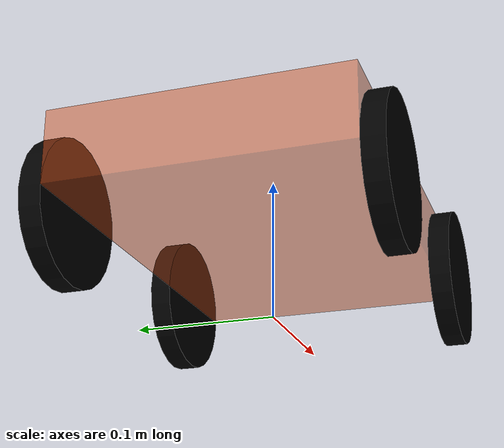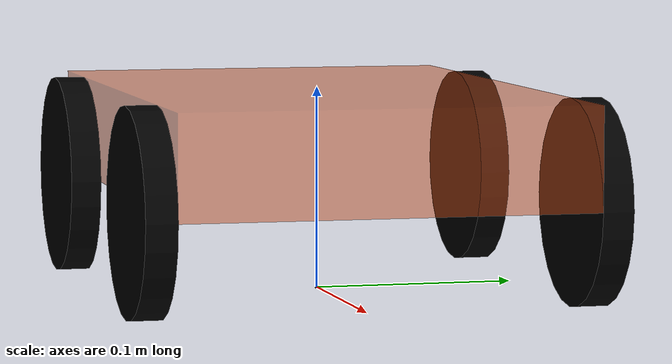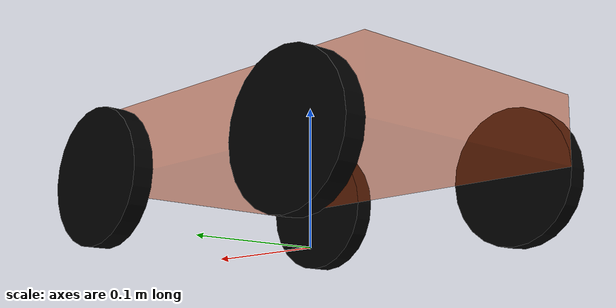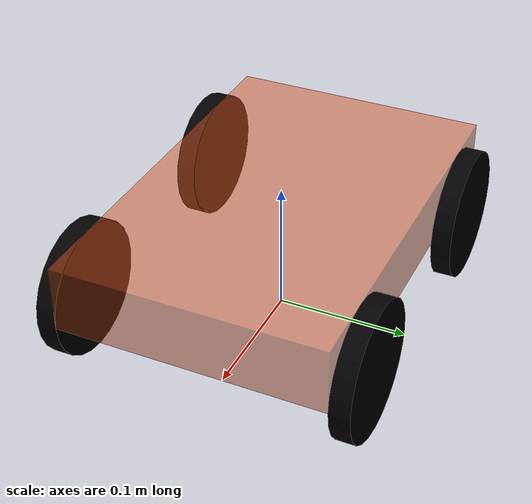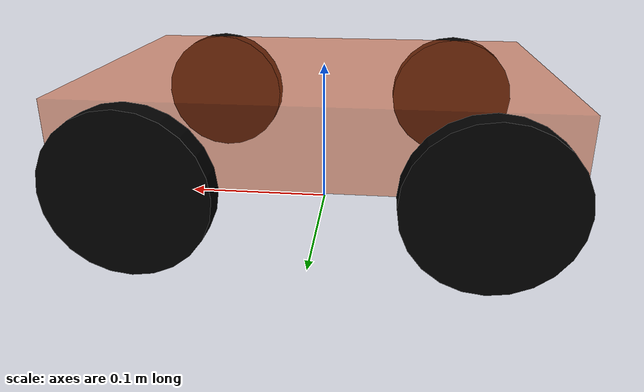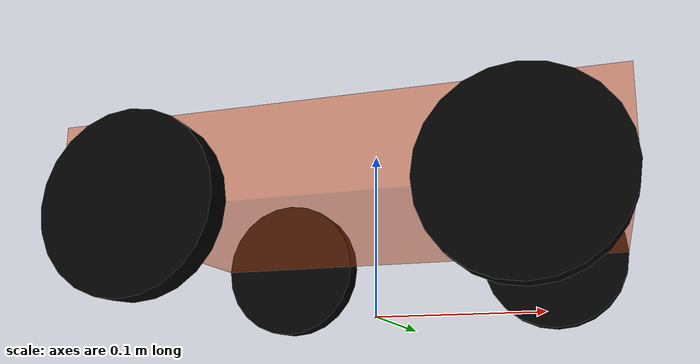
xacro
<robot name="mycar" xmlns:xacro="http://wiki.ros.org/xacro">
<!-- parameter -->
        <xacro:property name="PI" value="3.1415926"/>
        <material name="black">
            <color rgba="0 0 0 1" />
        </material >
        <material name="yellow">
            <color rgba="0.8 0.3 0.1 0.5"/>
        </material>

<!-- creat foot_print -->
              <xacro:macro name="create_sphere"  params="name radius  colorname mass">
                <link name="${name}">
                        <visual>
                                <geometry>
                                        <sphere radius="${radius}"/>
                                </geometry>
                                <material name="${colorname}"/>
                                <origin xyz="0 0 0" rpy="0 0 0"/>
                        </visual>
                </link>
        </xacro:macro>

        <xacro:create_sphere name="foot_print" radius="0.001" colorname="black" mass="0.01"/>

<!-- creat body link -->
         <xacro:property name="body_width" value="0.2"/>
        <xacro:property name="body_length" value="0.3"/>
        <xacro:property name="body_height" value="0.05"/>
        <xacro:property  name="body_mass" value="1" />

        <link name="body">
                        <visual>
                                        <geometry>
                                                        <box size="${body_length} ${body_width} ${body_height}"/>
                                        </geometry>
                                        <material name="yellow"/>
                                        <origin xyz="0 0 0" rpy="0 0 0"/>
                        </visual>
                        <collision>
                                        <geometry>
                                                        <box size="${body_length} ${body_width} ${body_height}"/>
                                        </geometry>
                                        <origin xyz="0 0 0" rpy="0 0 0"/>
                        </collision>
                        <xacro:Box_inertial_matrix m="${body_mass}" w="${body_width}" l="${body_length}" h="${body_height}"/>
        </link>

 <!-- create  joint  body2foot_print -->
<xacro:property name="vertical2ground_distance" value="0.05"/>

<joint name="body2foot_print" type="fixed">
        <parent link="foot_print"/>
        <child link="body"/>
        <origin xyz="0 0 ${body_height/2+vertical2ground_distance}" rpy="0 0 0"/>
</joint>

<!-- creat wheel link -->
        <xacro:macro name="create_cylinder"  params="name radius length colorname mass">
                <link name="${name}">
                        <visual>
                                <geometry>
                                        <cylinder radius="${radius}" length="${length}"/>
                                </geometry>
                                <material name="${colorname}"/>
                                <origin xyz="0 0 0" rpy="0 0 0"/>
                        </visual>
                        <collision>
                                <geometry>
                                        <cylinder radius="${radius}" length="${length}"/>
                                </geometry>
                                <origin xyz="0 0 0" rpy="0 0 0"/>
                        </collision>
                      <xacro:cylinder_inertial_matrix m="${mass}" r="${radius}" h="${length}" />
                </link>
        </xacro:macro>

        <xacro:property name="wheel_radius" value="0.05"/>
        <xacro:property name="wheel_length" value="0.015"/>
        <xacro:property name="wheel_mass" value="0.05" />

        <xacro:create_cylinder name="wheel_front_right" radius="${wheel_radius}" length="${wheel_length}" colorname="black" mass="${wheel_mass}"/>
        <xacro:create_cylinder name="wheel_front_left" radius="${wheel_radius}" length="${wheel_length}" colorname="black" mass="${wheel_mass}"/>
        <xacro:create_cylinder  name="wheel_behind_right" radius="${wheel_radius}" length="${wheel_length}" colorname="black" mass="${wheel_mass}"/>
        <xacro:create_cylinder name="wheel_behind_left" radius="${wheel_radius}" length="${wheel_length}" colorname="black" mass="${wheel_mass}"/>

<!-- create joint wheel2body -->
<xacro:property name="wheel_distance" value="${body_length/2-wheel_radius}"/>

 <xacro:macro name="wheel2body" params="name xflag yflag">
                <joint name="${name}2body" type="continuous">
                        <parent link="body"/>
                        <child link="${name}"/>
                        <origin xyz="${xflag}${wheel_distance} ${yflag}${body_width/2+wheel_length/2} ${wheel_radius-vertical2ground_distance-body_height/2}" rpy="${-PI/2} 0 0"/>
                        <axis xyz="0 0 1"/>
                </joint>
</xacro:macro>

<xacro:wheel2body name="wheel_front_right" xflag="+" yflag="-"/>
<xacro:wheel2body name="wheel_behind_right" xflag="-" yflag="-"/>
<xacro:wheel2body name="wheel_front_left" xflag="+" yflag="+"/>
<xacro:wheel2body name="wheel_behind_left" xflag="-" yflag="+"/>

<gazebo reference="body">
                <material> Gazebo/Yellow</material>
</gazebo>

<gazebo reference="wheel_front_right">
                <material>Gazebo/Black</material>
                    <mu1>1000000</mu1>
		    <mu2>1000000</mu2>
		    <kp>1000</kp>
		    <kd>1000</kd>
</gazebo>

<gazebo reference="wheel_behind_right">
                <material>Gazebo/Black</material>
                         <mu1>1000000</mu1>
		    <mu2>1000000</mu2>
		    <kp>1000</kp>
		    <kd>1000</kd>
</gazebo>

<gazebo reference="wheel_front_left">
                <material>Gazebo/Black</material>
                         <mu1>1000000</mu1>
		    <mu2>1000000</mu2>
		    <kp>1000</kp>
		    <kd>1000</kd>
</gazebo>

<gazebo reference="wheel_behind_left">
                <material>Gazebo/Black</material>
                         <mu1>1000000</mu1>
		    <mu2>1000000</mu2>
		    <kp>1000</kp>
		    <kd>1000</kd>
</gazebo>

</robot>
